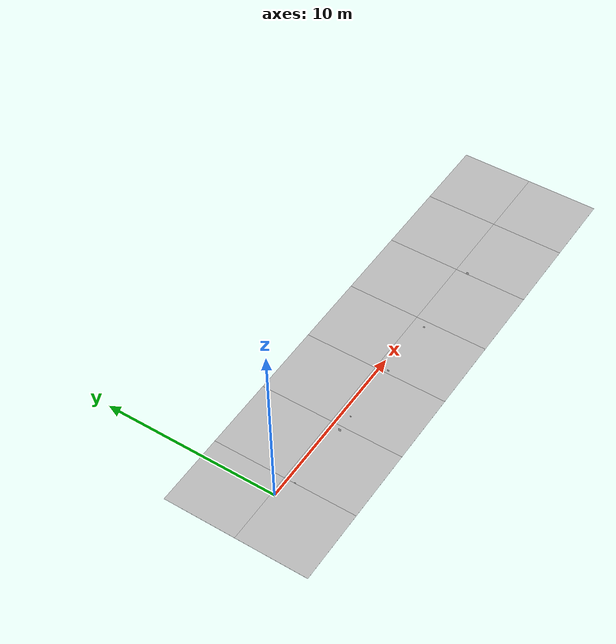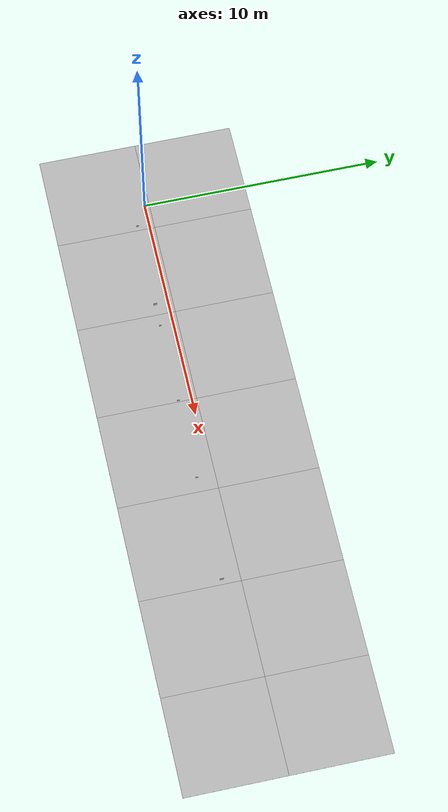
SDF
<sdf version="1.6">
 <world name="default">
  <light name="sun_light" type="directional">
   <pose>0 0 10 0 -0 0</pose>
   <diffuse>0.5 0.5 0.5 1</diffuse>
   <specular>0.1 0.1 0.1 1</specular>
   <direction>0.1 0.1 -0.9</direction>
   <attenuation>
    <range>20</range>
    <constant>0.5</constant>
    <linear>0.01</linear>
    <quadratic>0.001</quadratic>
   </attenuation>
  </light>
  <model name="Tile/0-0">
   <static>1</static>
   <link name="link">
    <collision name="collision">
     <geometry><plane><normal>0 0 1</normal><size>4.096 4.096</size></plane></geometry>
     <surface><friction><ode><mu>100</mu><mu2>50</mu2></ode></friction></surface>
    </collision>
    <visual name="visual">
     <cast_shadows>0</cast_shadows>
     <geometry><plane><normal>0 0 1</normal><size>4.096 4.096</size></plane></geometry>
     <material>
      <script>
       <uri>file://materials/scripts</uri>
       <uri>file://materials/textures</uri>
       <name>Tile/59aa48be58bd1d39c4f8729740ab94a3ee72491696f29f5efb5f4e6bfd79c256</name>
      </script>
     </material>
    </visual>
   </link>
   <pose>-0.952 -1.8519999999999999 0 0 -0 0</pose>
  </model>
  <model name="Tile/0-1">
   <static>1</static>
   <link name="link">
    <collision name="collision">
     <geometry><plane><normal>0 0 1</normal><size>4.096 4.096</size></plane></geometry>
     <surface><friction><ode><mu>100</mu><mu2>50</mu2></ode></friction></surface>
    </collision>
    <visual name="visual">
     <cast_shadows>0</cast_shadows>
     <geometry><plane><normal>0 0 1</normal><size>4.096 4.096</size></plane></geometry>
     <material>
      <script>
       <uri>file://materials/scripts</uri>
       <uri>file://materials/textures</uri>
       <name>Tile/cb742ec834ce0db14fa5edbd5a9bf9a3149f1d3629eb5aba388d11a938615e9e</name>
      </script>
     </material>
    </visual>
   </link>
   <pose>-0.952 2.244 0 0 -0 0</pose>
  </model>
  <model name="Tile/1-0">
   <static>1</static>
   <link name="link">
    <collision name="collision">
     <geometry><plane><normal>0 0 1</normal><size>4.096 4.096</size></plane></geometry>
     <surface><friction><ode><mu>100</mu><mu2>50</mu2></ode></friction></surface>
    </collision>
    <visual name="visual">
     <cast_shadows>0</cast_shadows>
     <geometry><plane><normal>0 0 1</normal><size>4.096 4.096</size></plane></geometry>
     <material>
      <script>
       <uri>file://materials/scripts</uri>
       <uri>file://materials/textures</uri>
       <name>Tile/88aa6c1ba2e389c2eef8b7d4c609f415ca4acb4c18d747929491a22a0553b7c5</name>
      </script>
     </material>
    </visual>
   </link>
   <pose>3.144 -1.8519999999999999 0 0 -0 0</pose>
  </model>
  <model name="Tile/1-1">
   <static>1</static>
   <link name="link">
    <collision name="collision">
     <geometry><plane><normal>0 0 1</normal><size>4.096 4.096</size></plane></geometry>
     <surface><friction><ode><mu>100</mu><mu2>50</mu2></ode></friction></surface>
    </collision>
    <visual name="visual">
     <cast_shadows>0</cast_shadows>
     <geometry><plane><normal>0 0 1</normal><size>4.096 4.096</size></plane></geometry>
     <material>
      <script>
       <uri>file://materials/scripts</uri>
       <uri>file://materials/textures</uri>
       <name>Tile/5ddd2a6cf5edb8f996345af7b87e090f548fe0b630b4632dd3ba9ed6e4d9b0d3</name>
      </script>
     </material>
    </visual>
   </link>
   <pose>3.144 2.244 0 0 -0 0</pose>
  </model>
  <model name="Tile/2-0">
   <static>1</static>
   <link name="link">
    <collision name="collision">
     <geometry><plane><normal>0 0 1</normal><size>4.096 4.096</size></plane></geometry>
     <surface><friction><ode><mu>100</mu><mu2>50</mu2></ode></friction></surface>
    </collision>
    <visual name="visual">
     <cast_shadows>0</cast_shadows>
     <geometry><plane><normal>0 0 1</normal><size>4.096 4.096</size></plane></geometry>
     <material>
      <script>
       <uri>file://materials/scripts</uri>
       <uri>file://materials/textures</uri>
       <name>Tile/44a31c5a39408ba7a0a0168b60c614ab25f96764beee5fcbbf468fa213d7123f</name>
      </script>
     </material>
    </visual>
   </link>
   <pose>7.24 -1.8519999999999999 0 0 -0 0</pose>
  </model>
  <model name="Tile/2-1">
   <static>1</static>
   <link name="link">
    <collision name="collision">
     <geometry><plane><normal>0 0 1</normal><size>4.096 4.096</size></plane></geometry>
     <surface><friction><ode><mu>100</mu><mu2>50</mu2></ode></friction></surface>
    </collision>
    <visual name="visual">
     <cast_shadows>0</cast_shadows>
     <geometry><plane><normal>0 0 1</normal><size>4.096 4.096</size></plane></geometry>
     <material>
      <script>
       <uri>file://materials/scripts</uri>
       <uri>file://materials/textures</uri>
       <name>Tile/e50c8d7debb2d978a98c5c8291165ed3c9c6861525d82b61217c05dae9f58dad</name>
      </script>
     </material>
    </visual>
   </link>
   <pose>7.24 2.244 0 0 -0 0</pose>
  </model>
  <model name="Tile/3-0">
   <static>1</static>
   <link name="link">
    <collision name="collision">
     <geometry><plane><normal>0 0 1</normal><size>4.096 4.096</size></plane></geometry>
     <surface><friction><ode><mu>100</mu><mu2>50</mu2></ode></friction></surface>
    </collision>
    <visual name="visual">
     <cast_shadows>0</cast_shadows>
     <geometry><plane><normal>0 0 1</normal><size>4.096 4.096</size></plane></geometry>
     <material>
      <script>
       <uri>file://materials/scripts</uri>
       <uri>file://materials/textures</uri>
       <name>Tile/f780bc1571086e9aca7181b404d5051761625ac339452fe6baa33fc625b22b04</name>
      </script>
     </material>
    </visual>
   </link>
   <pose>11.336 -1.8519999999999999 0 0 -0 0</pose>
  </model>
  <model name="Tile/3-1">
   <static>1</static>
   <link name="link">
    <collision name="collision">
     <geometry><plane><normal>0 0 1</normal><size>4.096 4.096</size></plane></geometry>
     <surface><friction><ode><mu>100</mu><mu2>50</mu2></ode></friction></surface>
    </collision>
    <visual name="visual">
     <cast_shadows>0</cast_shadows>
     <geometry><plane><normal>0 0 1</normal><size>4.096 4.096</size></plane></geometry>
     <material>
      <script>
       <uri>file://materials/scripts</uri>
       <uri>file://materials/textures</uri>
       <name>Tile/e50c8d7debb2d978a98c5c8291165ed3c9c6861525d82b61217c05dae9f58dad</name>
      </script>
     </material>
    </visual>
   </link>
   <pose>11.336 2.244 0 0 -0 0</pose>
  </model>
  <model name="Tile/4-0">
   <static>1</static>
   <link name="link">
    <collision name="collision">
     <geometry><plane><normal>0 0 1</normal><size>4.096 4.096</size></plane></geometry>
     <surface><friction><ode><mu>100</mu><mu2>50</mu2></ode></friction></surface>
    </collision>
    <visual name="visual">
     <cast_shadows>0</cast_shadows>
     <geometry><plane><normal>0 0 1</normal><size>4.096 4.096</size></plane></geometry>
     <material>
      <script>
       <uri>file://materials/scripts</uri>
       <uri>file://materials/textures</uri>
       <name>Tile/dc5fc703197bd2caab4ff60d52e0c3c288062387a22f360ec5d45c97f0b49c39</name>
      </script>
     </material>
    </visual>
   </link>
   <pose>15.431999999999999 -1.8519999999999999 0 0 -0 0</pose>
  </model>
  <model name="Tile/4-1">
   <static>1</static>
   <link name="link">
    <collision name="collision">
     <geometry><plane><normal>0 0 1</normal><size>4.096 4.096</size></plane></geometry>
     <surface><friction><ode><mu>100</mu><mu2>50</mu2></ode></friction></surface>
    </collision>
    <visual name="visual">
     <cast_shadows>0</cast_shadows>
     <geometry><plane><normal>0 0 1</normal><size>4.096 4.096</size></plane></geometry>
     <material>
      <script>
       <uri>file://materials/scripts</uri>
       <uri>file://materials/textures</uri>
       <name>Tile/c29ff11f73c23110f48ffd4e953b2ead0ad8aa8279076ce7ae1e2da7adf69874</name>
      </script>
     </material>
    </visual>
   </link>
   <pose>15.431999999999999 2.244 0 0 -0 0</pose>
  </model>
  <model name="Tile/5-0">
   <static>1</static>
   <link name="link">
    <collision name="collision">
     <geometry><plane><normal>0 0 1</normal><size>4.096 4.096</size></plane></geometry>
     <surface><friction><ode><mu>100</mu><mu2>50</mu2></ode></friction></surface>
    </collision>
    <visual name="visual">
     <cast_shadows>0</cast_shadows>
     <geometry><plane><normal>0 0 1</normal><size>4.096 4.096</size></plane></geometry>
     <material>
      <script>
       <uri>file://materials/scripts</uri>
       <uri>file://materials/textures</uri>
       <name>Tile/bbc4a5e89d57f9591e24c6eda878da4a9f78077972e0233fa79a0e1398b9998c</name>
      </script>
     </material>
    </visual>
   </link>
   <pose>19.528 -1.8519999999999999 0 0 -0 0</pose>
  </model>
  <model name="Tile/5-1">
   <static>1</static>
   <link name="link">
    <collision name="collision">
     <geometry><plane><normal>0 0 1</normal><size>4.096 4.096</size></plane></geometry>
     <surface><friction><ode><mu>100</mu><mu2>50</mu2></ode></friction></surface>
    </collision>
    <visual name="visual">
     <cast_shadows>0</cast_shadows>
     <geometry><plane><normal>0 0 1</normal><size>4.096 4.096</size></plane></geometry>
     <material>
      <script>
       <uri>file://materials/scripts</uri>
       <uri>file://materials/textures</uri>
       <name>Tile/b08eac2883c4185000b59246b4e60f8a7ce7d1a2a316f90000e72f9c60d13523</name>
      </script>
     </material>
    </visual>
   </link>
   <pose>19.528 2.244 0 0 -0 0</pose>
  </model>
  <model name="Tile/6-0">
   <static>1</static>
   <link name="link">
    <collision name="collision">
     <geometry><plane><normal>0 0 1</normal><size>4.096 4.096</size></plane></geometry>
     <surface><friction><ode><mu>100</mu><mu2>50</mu2></ode></friction></surface>
    </collision>
    <visual name="visual">
     <cast_shadows>0</cast_shadows>
     <geometry><plane><normal>0 0 1</normal><size>4.096 4.096</size></plane></geometry>
     <material>
      <script>
       <uri>file://materials/scripts</uri>
       <uri>file://materials/textures</uri>
       <name>Tile/5eab350b8220ac9944dbdfa4ac3288c7c17e24c3bf5df0dfcf6173d64dae00a1</name>
      </script>
     </material>
    </visual>
   </link>
   <pose>23.624 -1.8519999999999999 0 0 -0 0</pose>
  </model>
  <model name="Tile/6-1">
   <static>1</static>
   <link name="link">
    <collision name="collision">
     <geometry><plane><normal>0 0 1</normal><size>4.096 4.096</size></plane></geometry>
     <surface><friction><ode><mu>100</mu><mu2>50</mu2></ode></friction></surface>
    </collision>
    <visual name="visual">
     <cast_shadows>0</cast_shadows>
     <geometry><plane><normal>0 0 1</normal><size>4.096 4.096</size></plane></geometry>
     <material>
      <script>
       <uri>file://materials/scripts</uri>
       <uri>file://materials/textures</uri>
       <name>Tile/5eab350b8220ac9944dbdfa4ac3288c7c17e24c3bf5df0dfcf6173d64dae00a1</name>
      </script>
     </material>
    </visual>
   </link>
   <pose>23.624 2.244 0 0 -0 0</pose>
  </model>
  <model name="Sign/-13">
   <static>1</static>
   <link name="link">
    <visual name="visual">
     <cast_shadows>0</cast_shadows>
     <geometry><plane><normal>0 0 1</normal><size>0.1 0.1</size></plane></geometry>
     <material>
      <script>
       <uri>file://materials/scripts</uri>
       <uri>file://materials/textures</uri>
       <name>Sign/stvo-306</name>
      </script>
     </material>
    </visual>
   </link>
   <pose>0.9999999999999999 -0.49999999999999994 0.2 1.5707963267948966 0 4.71238898038469</pose>
  </model>
  <model name="Sign/-18">
   <static>1</static>
   <link name="link">
    <visual name="visual">
     <cast_shadows>0</cast_shadows>
     <geometry><plane><normal>0 0 1</normal><size>0.15 0.15</size></plane></geometry>
     <material>
      <script>
       <uri>file://materials/scripts</uri>
       <uri>file://materials/textures</uri>
       <name>Sign/stvo-274.1</name>
      </script>
     </material>
    </visual>
   </link>
   <pose>4.805 -0.5499999999999999 0.22499999999999998 1.5707963267948966 0 4.71238898038469</pose>
  </model>
  <model name="Sign/-23">
   <static>1</static>
   <link name="link">
    <visual name="visual">
     <cast_shadows>0</cast_shadows>
     <geometry><plane><normal>0 0 1</normal><size>0.1 0.1</size></plane></geometry>
     <material>
      <script>
       <uri>file://materials/scripts</uri>
       <uri>file://materials/textures</uri>
       <name>Sign/stvo-208</name>
      </script>
     </material>
    </visual>
   </link>
   <pose>5.8149999999999995 -0.5499999999999999 0.2 1.5707963267948966 0 4.71238898038469</pose>
  </model>
  <model name="Sign/-33">
   <static>1</static>
   <link name="link">
    <visual name="visual">
     <cast_shadows>0</cast_shadows>
     <geometry><plane><normal>0 0 1</normal><size>0.1 0.1</size></plane></geometry>
     <material>
      <script>
       <uri>file://materials/scripts</uri>
       <uri>file://materials/textures</uri>
       <name>Sign/stvo-208</name>
      </script>
     </material>
    </visual>
   </link>
   <pose>9.325000000000001 -0.5499999999999999 0.2 1.5707963267948966 0 4.71238898038469</pose>
  </model>
  <model name="Sign/-43">
   <static>1</static>
   <link name="link">
    <visual name="visual">
     <cast_shadows>0</cast_shadows>
     <geometry><plane><normal>0 0 1</normal><size>0.1 0.1</size></plane></geometry>
     <material>
      <script>
       <uri>file://materials/scripts</uri>
       <uri>file://materials/textures</uri>
       <name>Sign/stvo-208</name>
      </script>
     </material>
    </visual>
   </link>
   <pose>12.835 -0.5499999999999999 0.2 1.5707963267948966 0 4.71238898038469</pose>
  </model>
  <model name="Sign/-55">
   <static>1</static>
   <link name="link">
    <visual name="visual">
     <cast_shadows>0</cast_shadows>
     <geometry><plane><normal>0 0 1</normal><size>0.15 0.15</size></plane></geometry>
     <material>
      <script>
       <uri>file://materials/scripts</uri>
       <uri>file://materials/textures</uri>
       <name>Sign/stvo-274.2</name>
      </script>
     </material>
    </visual>
   </link>
   <pose>17.345 -0.5499999999999999 0.22499999999999998 1.5707963267948966 0 4.71238898038469</pose>
  </model>
 </world>
</sdf>
